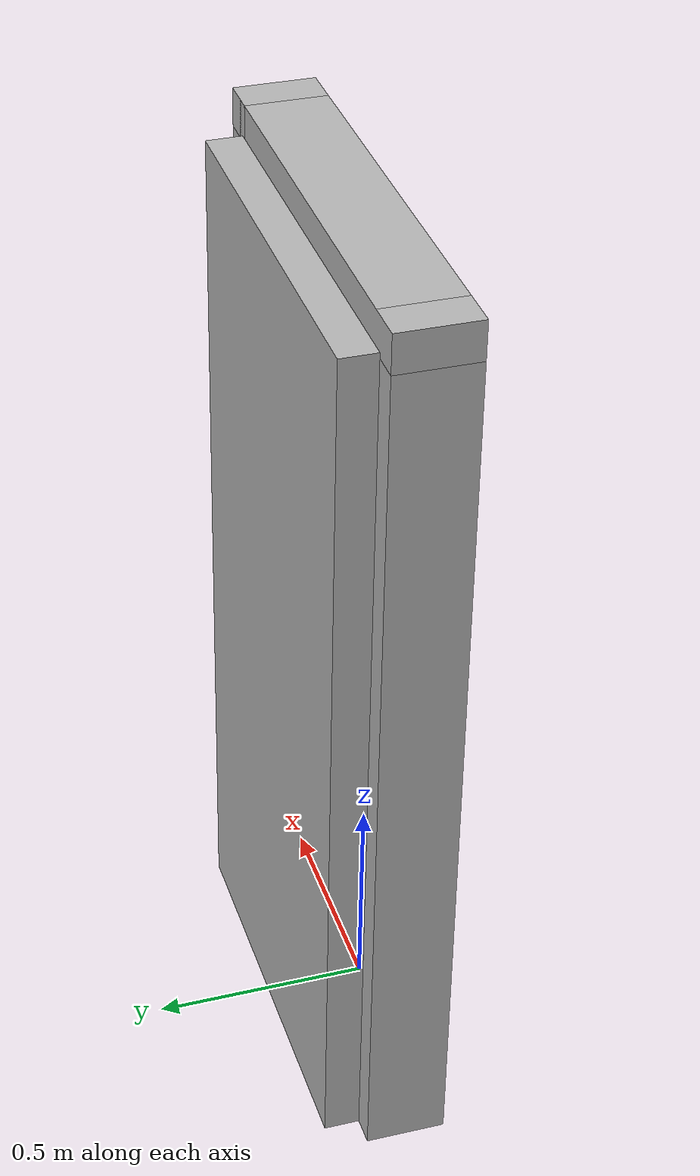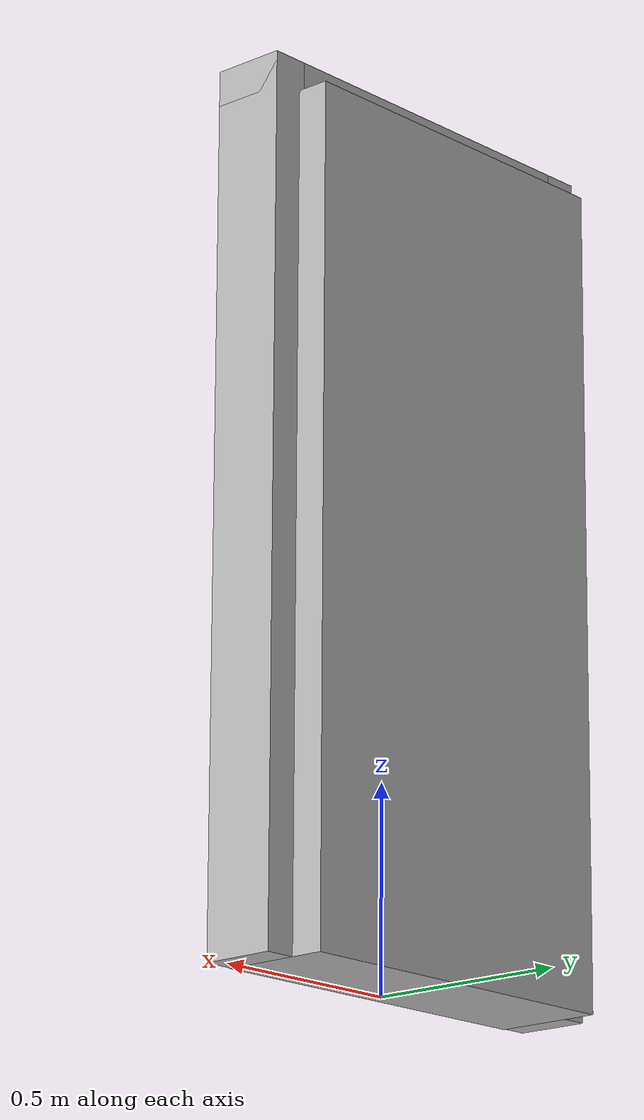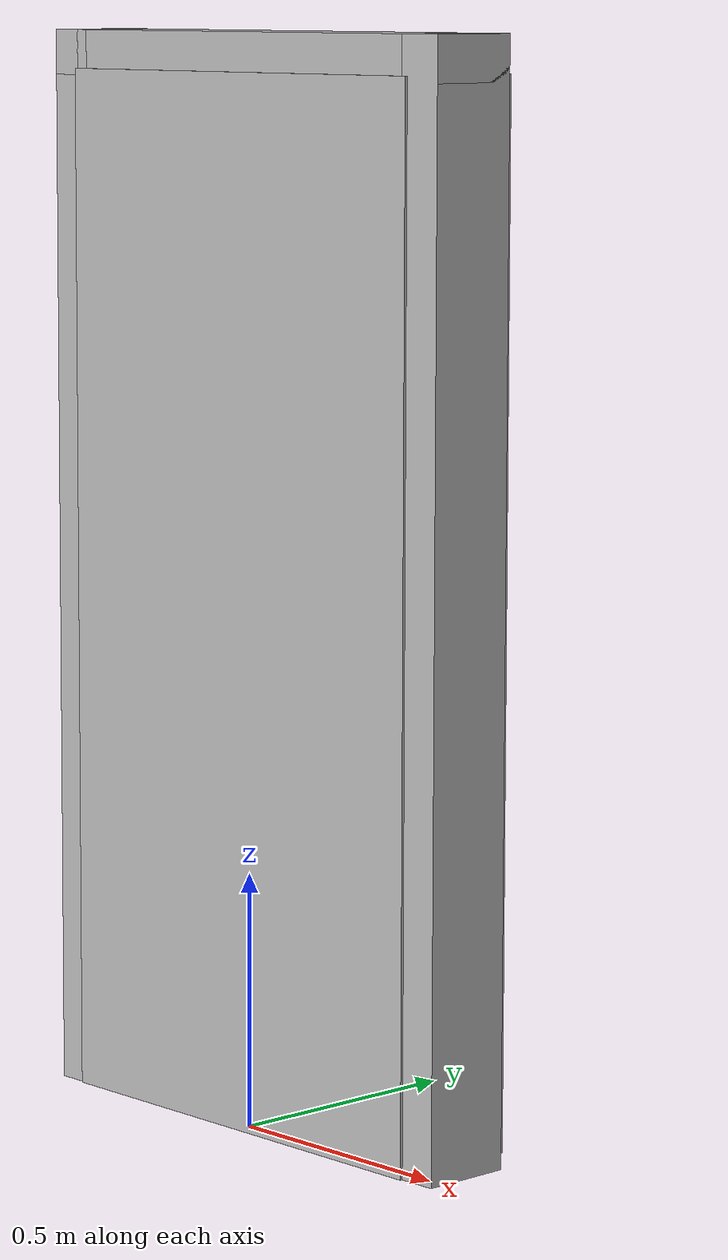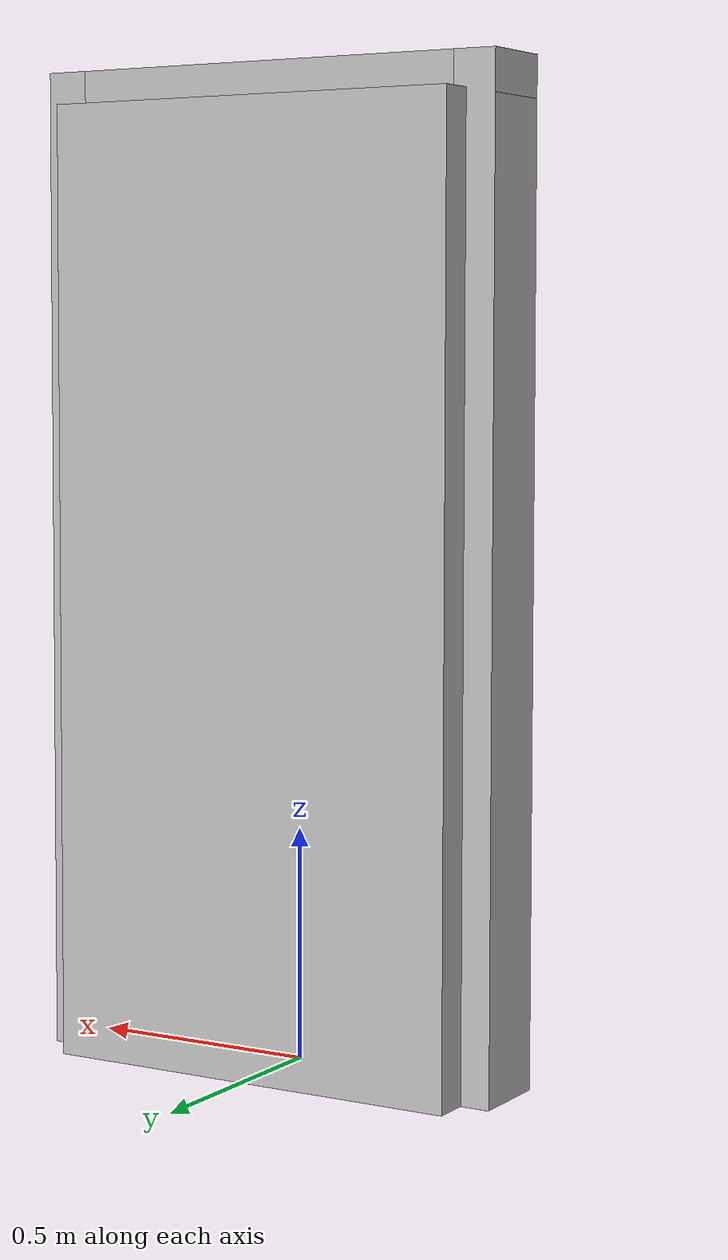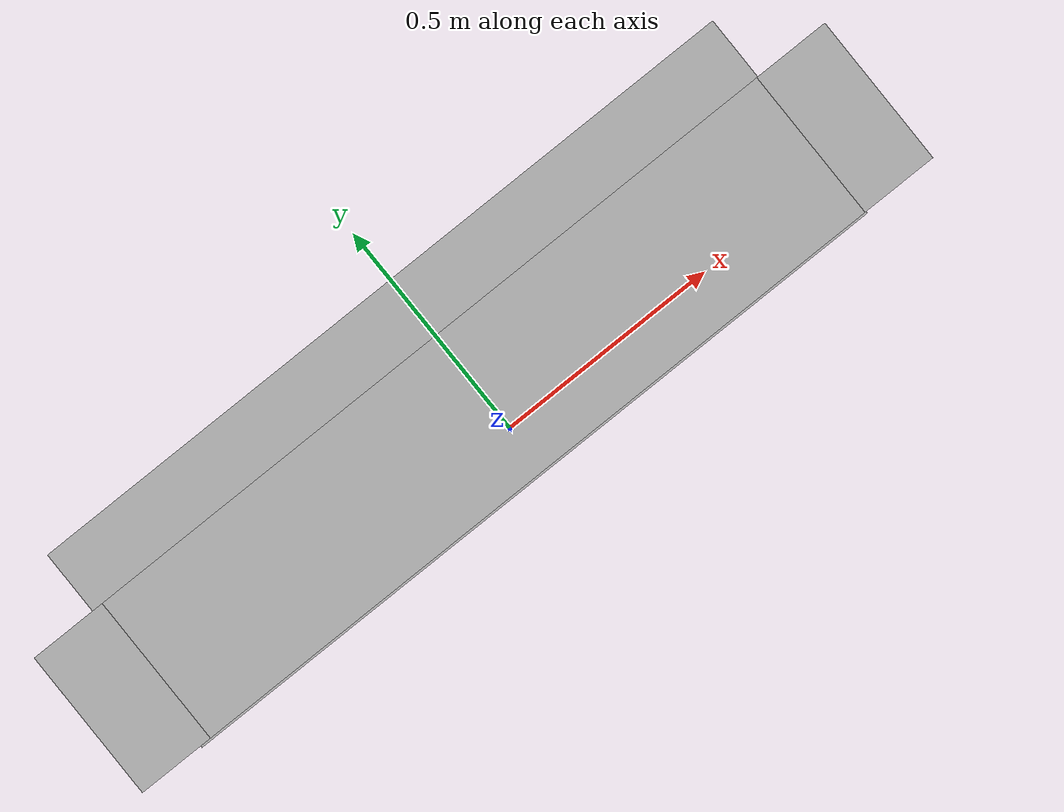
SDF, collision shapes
<?xml version='1.0' encoding='utf-8'?>
<sdf version="1.5">
  <model name="door">
    <static>true</static>
    <link name="link">
      <collision name="collision_frame_left">
        <pose>-0.48799 0.061363 1.053382 0 0 0</pose>
        <geometry>
          <box>
            <size>0.091829 0.182084 2.106763</size>
          </box>
        </geometry>
      </collision>
      <collision name="collision_frame_right">
        <pose>0.48799 0.061363 1.053382 0 0 0</pose>
        <geometry>
          <box>
            <size>0.091829 0.182084 2.106763</size>
          </box>
        </geometry>
      </collision>
      <collision name="collision_frame_top">
        <pose>0 0.061363 2.0632 0 0 0</pose>
        <geometry>
          <box>
            <size>1.06781 0.182084 0.087126</size>
          </box>
        </geometry>
      </collision>
      <collision name="collision_door_slab">
        <pose>-0.006577 0.09945 1.016 0 0 0</pose>
        <geometry>
          <box>
            <size>0.927155 0.268485 2.032</size>
          </box>
        </geometry>
      </collision>
      <visual name="visual">
        <geometry>
          <mesh>
            <uri>model://door/meshes/door.obj</uri>
            <scale>0.01 0.01 0.01</scale>
          </mesh>
        </geometry>
      </visual>
    </link>
  </model>
</sdf>
